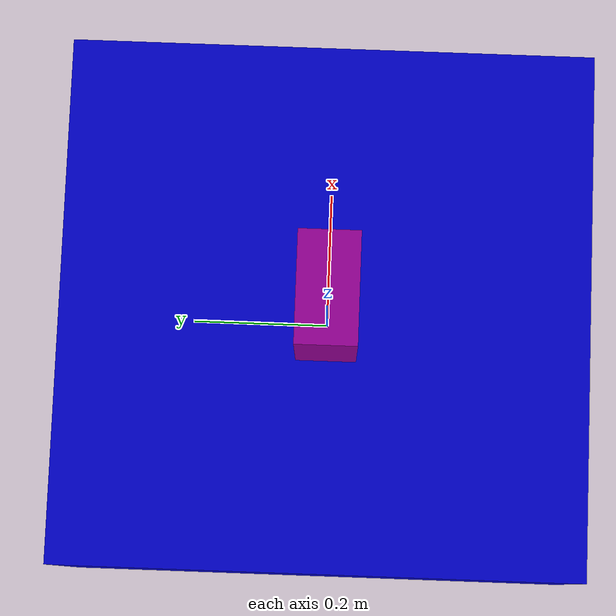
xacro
<?xml version="1.0"?>
<robot xmlns:xacro="http://www.ros.org/wiki/xacro" name="my_modular_robot">

    <xacro:include filename="devices/materials.xacro" />
    <xacro:include filename="devices/rover_assembly.xacro" />

    <link name="base_link"/>

    <xacro:build_robot parent="base_link" />

</robot>

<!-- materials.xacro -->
<robot xmlns:xacro="http://www.ros.org/wiki/xacro">
    <!-- Jednostka centralna i sterowanie: Raspberry Pi 5, STM32 NUCLEO -->
    <material name="central_control_unit">
        <color rgba="0.0 0.8 0.0 1.0"/>
    </material>
    <!-- System percepcji i czujników: RPLidar, kamery -->
    <material name="sensors_perception">
        <color rgba="0.0 0.0 0.8 1.0"/>
    </material>
    <!-- Napęd i mechanizmy wykonawcze: silniki BLDC Nema23, sterowniki BLD-120A-->
    <material name="actuators_drives">
        <color rgba="0.3 0.3 0.3 1.0"/>
    </material>
    <!-- Komunikacja bezprzewodowa:  MikroTik, Ubiquiti, antena-->
    <material name="wireless_communication">
        <color rgba="0.6 0.0 0.6 1.0"/>
    </material>
    <!-- Zasilanie i konwersja energii: LiFePO4, przetwornice Step-Down, multiplekser I2C-->
    <material name="power_energy">
        <color rgba="1.0 0.5 0.0 1.0"/>
    </material>
    <!-- Mechanika i gospodarka cieplna: tłumiki, Raspberry Pi Active Cooler, kasetę sterowniczą-->
    <material name="mechanics_thermal">
        <color rgba="0.75 0.75 0.75 1.0"/>
    </material>
    <!-- Mechanika i gospodarka cieplna: BONPOW-->
    <material name="signaling_ui">
        <color rgba="1.0 0.0 0.0 1.0"/>
    </material>

</robot>

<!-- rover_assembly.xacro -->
<robot xmlns:xacro="http://www.ros.org/wiki/xacro">
    <xacro:include filename="all_devices.xacro" />
    <xacro:include filename="factory.xacro" />

    <xacro:macro name="build_robot" params="parent">

        <xacro:insert_component
            name="Active_Cooler"
            prefix="cooler"
            parent="rpi5_link"
            material="mechanics_thermal" />

        <xacro:insert_component
            name="AirMax_Sector"
            prefix="sector_ant"
            parent="${parent}"
            material="wireless_communication" />

        <xacro:insert_component
            name="Antena"
            prefix="wifi_ant"
            parent="router_link"
            material="wireless_communication" />

        <xacro:insert_component
            name="Battery"
            prefix="main_battery"
            parent="${parent}"
            material="power_energy" />

        <xacro:insert_component
            name="BLDC"
            prefix="motor"
            parent="${parent}"
            material="actuators_drives" />

        <xacro:insert_component
            name="Control_Box"
            prefix="box"
            parent="${parent}"
            material="mechanics_thermal" />

        <xacro:insert_component
            name="Dampers"
            prefix="damper_1"
            parent="${parent}"
            material="mechanics_thermal" />

        <xacro:insert_component
            name="Driver_BLD120A"
            prefix="motor_driver"
            parent="${parent}"
            material="actuators_drives" />

        <xacro:insert_component
            name="Encoder"
            prefix="encoder_1"
            parent="${parent}"
            material="sensors_perception" />

        <xacro:insert_component
            name="GPS"
            prefix="gps"
            parent="${parent}"
            material="sensors_perception" />

        <xacro:insert_component
            name="LP22DF"
            prefix="fan_extra"
            parent="${parent}"
            material="mechanics_thermal" />

        <xacro:insert_component
            name="MikroTik"
            prefix="router"
            parent="${parent}"
            material="wireless_communication" />

        <xacro:insert_component
            name="NoIR_Cam"
            prefix="cam_noir"
            parent="rpi5_link"
            material="sensors_perception" />

        <xacro:insert_component
            name="Pololu_8A"
            prefix="pololu"
            parent="${parent}"
            material="power_energy" />

        <xacro:insert_component
            name="RocketM2"
            prefix="rocket"
            parent="${parent}"
            material="wireless_communication" />

        <xacro:insert_component
            name="RPI5"
            prefix="rpi5"
            parent="${parent}"
            material="central_control_unit" />

        <xacro:insert_component
            name="RPi_Cam_v3"
            prefix="cam_v3"
            parent="rpi5_link"
            material="sensors_perception" />

        <xacro:insert_component
            name="RPLidar"
            prefix="lidar"
            parent="${parent}"
            material="sensors_perception" />

        <xacro:insert_component
            name="Signal_Tower"
            prefix="tower"
            parent="${parent}"
            material="signaling_ui" />

        <xacro:insert_component
            name="StepDown_5A"
            prefix="step_down"
            parent="${parent}"
            material="power_energy" />

        <xacro:insert_component
            name="STM32"
            prefix="stm32"
            parent="${parent}"
            material="central_control_unit" />

        <xacro:insert_component
            name="TCA9548A"
            prefix="i2c_mux"
            parent="rpi5_link"
            material="power_energy" />

    </xacro:macro>
</robot>

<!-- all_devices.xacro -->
<robot xmlns:xacro="http://www.ros.org/wiki/xacro" name="robot">

    <xacro:include filename="data/Active_Cooler_data.xacro" />
    <xacro:include filename="data/AirMax_Sector_data.xacro" />
    <xacro:include filename="data/Antena_data.xacro" />
    <xacro:include filename="data/Battery_data.xacro" />
    <xacro:include filename="data/BLDC_data.xacro" />
    <xacro:include filename="data/Control_Box_data.xacro" />
    <xacro:include filename="data/Dampers_data.xacro" />
    <xacro:include filename="data/Driver_BLD120A_data.xacro" />
    <xacro:include filename="data/Encoder_data.xacro" />
    <xacro:include filename="data/GPS_data.xacro" />
    <xacro:include filename="data/LP22DF_data.xacro" />
    <xacro:include filename="data/MikroTik_data.xacro" />
    <xacro:include filename="data/NoIR_Cam_data.xacro" />
    <xacro:include filename="data/Pololu_8A_data.xacro" />
    <xacro:include filename="data/RocketM2_data.xacro" />
    <xacro:include filename="data/RPi_Cam_v3_data.xacro" />
    <xacro:include filename="data/RPI5_data.xacro" />
    <xacro:include filename="data/RPLidar_data.xacro" />
    <xacro:include filename="data/Signal_Tower_data.xacro" />
    <xacro:include filename="data/StepDown_5A_data.xacro" />
    <xacro:include filename="data/STM32_data.xacro" />
    <xacro:include filename="data/TCA9548A_data.xacro" />

    <xacro:include filename="position.xacro" />
    <xacro:include filename="materials.xacro" />
</robot>

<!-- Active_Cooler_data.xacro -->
<robot xmlns:xacro="http://www.ros.org/wiki/xacro">
    <!-- POMIARY PODANE W MILIMETRACH -->
    <!-- Raspberry Pi Active Cooler - aktywne chłodzenie - radiator + wentylator do Raspberry Pi 5 -->
    <xacro:macro name="Active_Cooler_data">
        <xacro:property name="length" value="85.0" scope="parent" />
        <xacro:property name="width" value="56.0" scope="parent" />
        <xacro:property name="height" value="5.0" scope="parent" />
        <xacro:property name="weight" value="0.025" scope="parent" />
        <xacro:property name="ixx" value="0.0" scope="parent" />
        <xacro:property name="ixy" value="0.0" scope="parent" />
        <xacro:property name="ixz" value="0.0" scope="parent" />
        <xacro:property name="iyx" value="0.0" scope="parent" />
        <xacro:property name="iyy" value="0.0" scope="parent" />
        <xacro:property name="iyz" value="0.0" scope="parent" />
        <xacro:property name="izx" value="0.0" scope="parent" />
        <xacro:property name="izy" value="0.0" scope="parent" />
        <xacro:property name="izz" value="0.0" scope="parent" />
    </xacro:macro>
</robot>

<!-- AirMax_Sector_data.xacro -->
<robot xmlns:xacro="http://www.ros.org/wiki/xacro">
    <!-- POMIARY PODANE W MILIMETRACH -->
    <!-- Ubiquiti AirMax Sector  -->
    <xacro:macro name="AirMax_Sector_data">
        <xacro:property name="length" value="155.0" scope="parent" />
        <xacro:property name="width" value="85.0" scope="parent" />
        <xacro:property name="height" value="710.0" scope="parent" />
        <xacro:property name="weight" value="3.9" scope="parent" />
        <xacro:property name="ixx" value="0.177" scope="parent" />
        <xacro:property name="ixy" value="0.0000107" scope="parent" />
        <xacro:property name="ixz" value="0.0000152" scope="parent" />
        <xacro:property name="iyx" value="0.0000107" scope="parent" />
        <xacro:property name="iyy" value="0.009" scope="parent" />
        <xacro:property name="iyz" value="0.0000348" scope="parent" />
        <xacro:property name="izx" value="0.0000152" scope="parent" />
        <xacro:property name="izy" value="0.0000348" scope="parent" />
        <xacro:property name="izz" value="0.183" scope="parent" />
    </xacro:macro>
</robot>

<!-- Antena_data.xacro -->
<robot xmlns:xacro="http://www.ros.org/wiki/xacro">
    <!-- POMIARY PODANE W MILIMETRACH -->
    <!-- Antena dookolna -->
    <xacro:macro name="Antena_data">
        <xacro:property name="length" value="24.0" scope="parent" />
        <xacro:property name="width" value="24.0" scope="parent" />
        <xacro:property name="height" value="697.0" scope="parent" />
        <xacro:property name="weight" value="0.75" scope="parent" />
        <xacro:property name="ixx" value="0.034" scope="parent" />
        <xacro:property name="ixy" value="0.000081" scope="parent" />
        <xacro:property name="ixz" value="0.00000382" scope="parent" />
        <xacro:property name="iyx" value="0.000081" scope="parent" />
        <xacro:property name="iyy" value="0.0000799" scope="parent" />
        <xacro:property name="iyz" value="0.0" scope="parent" />
        <xacro:property name="izx" value="0.0" scope="parent" />
        <xacro:property name="izy" value="0.0" scope="parent" />
        <xacro:property name="izz" value="0.034" scope="parent" />
    </xacro:macro>
</robot>

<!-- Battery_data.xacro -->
<robot xmlns:xacro="http://www.ros.org/wiki/xacro">
    <!-- POMIARY PODANE W MILIMETRACH -->
    <!-- AKUMULATOR LITOWO-JONOWY 24V 100AH LIFEPO4 WYSOKA WYDAJNOŚĆ,DŁUGA ŻYWOTNOŚĆ -->
    <xacro:macro name="Battery_data">
        <xacro:property name="length" value="482.6" scope="parent" />
        <xacro:property name="width" value="170.1" scope="parent" />
        <xacro:property name="height" value="241.0" scope="parent" />
        <xacro:property name="weight" value="21.0" scope="parent" />
        <xacro:property name="ixx" value="0.51" scope="parent" />
        <xacro:property name="ixy" value="0.0" scope="parent" />
        <xacro:property name="ixz" value="0.0" scope="parent" />
        <xacro:property name="iyx" value="0.0" scope="parent" />
        <xacro:property name="iyy" value="0.152" scope="parent" />
        <xacro:property name="iyz" value="0.0" scope="parent" />
        <xacro:property name="izx" value="0.0" scope="parent" />
        <xacro:property name="izy" value="0.0" scope="parent" />
        <xacro:property name="izz" value="0.459" scope="parent" />
    </xacro:macro>
</robot>

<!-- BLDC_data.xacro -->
<robot xmlns:xacro="http://www.ros.org/wiki/xacro">
    <!-- POMIARY PODANE W MILIMETRACH -->
    <!-- Silnik bezszczotkowy BLDC Nema23 125W 24VDC (1szt.) z przekładnia -->
    <xacro:macro name="BLDC_data">
        <xacro:property name="length" value="208.0" scope="parent" />
        <xacro:property name="width" value="60.0" scope="parent" />
        <xacro:property name="height" value="60.0" scope="parent" />
        <xacro:property name="weight" value="2.02" scope="parent" />
        <xacro:property name="ixx" value="0.006" scope="parent" />
        <xacro:property name="ixy" value="0.00000000854" scope="parent" />
        <xacro:property name="ixz" value="0.00000224" scope="parent" />
        <xacro:property name="iyx" value="0.00000000854" scope="parent" />
        <xacro:property name="iyy" value="0.006" scope="parent" />
        <xacro:property name="iyz" value="0.00000131" scope="parent" />
        <xacro:property name="izx" value="0.00000224" scope="parent" />
        <xacro:property name="izy" value="0.00000131" scope="parent" />
        <xacro:property name="izz" value="0.001" scope="parent" />
    </xacro:macro>
</robot>

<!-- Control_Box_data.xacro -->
<robot xmlns:xacro="http://www.ros.org/wiki/xacro">
    <!-- POMIARY PODANE W MILIMETRACH -->
    <!-- FB1W-YW1B-V4E02-RIDEC-Kaseta sterownicza -->
    <xacro:macro name="Control_Box_data">
        <xacro:property name="length" value="40.0" scope="parent" />
        <xacro:property name="width" value="40.0" scope="parent" />
        <xacro:property name="height" value="80.0" scope="parent" />
        <xacro:property name="weight" value="0.2272" scope="parent" />
        <xacro:property name="ixx" value="0.0" scope="parent" />
        <xacro:property name="ixy" value="0.0" scope="parent" />
        <xacro:property name="ixz" value="0.0" scope="parent" />
        <xacro:property name="iyx" value="0.0" scope="parent" />
        <xacro:property name="iyy" value="0.0" scope="parent" />
        <xacro:property name="iyz" value="0.0" scope="parent" />
        <xacro:property name="izx" value="0.0" scope="parent" />
        <xacro:property name="izy" value="0.0" scope="parent" />
        <xacro:property name="izz" value="0.0" scope="parent" />
    </xacro:macro>
</robot>

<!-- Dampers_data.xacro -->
<robot xmlns:xacro="http://www.ros.org/wiki/xacro">
    <!-- POMIARY PODANE W MILIMETRACH -->
    <!-- ALUMINIOWE TŁUMIKI TYLNE POgrubione SPRĘŻYNY 187 MM - 4 SZT. srebrne GPM ARRMA 1/5 KRATON 8S OUTCAST 8S -->
    <xacro:macro name="Dampers_data">
        <xacro:property name="length" value="172.854" scope="parent" />
        <xacro:property name="width" value="20.0" scope="parent" />
        <xacro:property name="height" value="0.0" scope="parent" />
        <xacro:property name="weight" value="0.4" scope="parent" />
        <xacro:property name="ixx" value="0.0" scope="parent" />
        <xacro:property name="ixy" value="0.0" scope="parent" />
        <xacro:property name="ixz" value="0.0" scope="parent" />
        <xacro:property name="iyx" value="0.0" scope="parent" />
        <xacro:property name="iyy" value="0.0" scope="parent" />
        <xacro:property name="iyz" value="0.0" scope="parent" />
        <xacro:property name="izx" value="0.0" scope="parent" />
        <xacro:property name="izy" value="0.0" scope="parent" />
        <xacro:property name="izz" value="0.0" scope="parent" />
    </xacro:macro>
</robot>

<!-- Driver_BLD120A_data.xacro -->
<robot xmlns:xacro="http://www.ros.org/wiki/xacro">
    <!-- POMIARY PODANE W MILIMETRACH -->
    <!-- Sterownik silnika bezszczotkowego BLDC BLD-120A 10A 12-48 VDC (4 szt.) -->
    <xacro:macro name="Driver_BLD120A_data">
        <xacro:property name="length" value="90.0" scope="parent" />
        <xacro:property name="width" value="143.0" scope="parent" />
        <xacro:property name="height" value="33.0" scope="parent" />
        <xacro:property name="weight" value="0.6" scope="parent" />
        <xacro:property name="ixx" value="0.001" scope="parent" />
        <xacro:property name="ixy" value="0.0000000905" scope="parent" />
        <xacro:property name="ixz" value="0.0000096" scope="parent" />
        <xacro:property name="iyx" value="0.0000000905" scope="parent" />
        <xacro:property name="iyy" value="0.0" scope="parent" />
        <xacro:property name="iyz" value="0.000000613" scope="parent" />
        <xacro:property name="izx" value="0.0000096" scope="parent" />
        <xacro:property name="izy" value="0.000000613" scope="parent" />
        <xacro:property name="izz" value="0.001" scope="parent" />
    </xacro:macro>
</robot>

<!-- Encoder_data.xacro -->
<robot xmlns:xacro="http://www.ros.org/wiki/xacro">
    <!-- POMIARY PODANE W MILIMETRACH -->
    <!-- Moduł enkodera magnetycznego z układem AS5600 -->
    <xacro:macro name="Encoder_data">
        <xacro:property name="length" value="23.2" scope="parent" />
        <xacro:property name="width" value="22.65" scope="parent" />
        <xacro:property name="height" value="3.5" scope="parent" />
        <xacro:property name="weight" value="0.0001" scope="parent" />
        <xacro:property name="ixx" value="0.000000032" scope="parent" />
        <xacro:property name="ixy" value="0.0" scope="parent" />
        <xacro:property name="ixz" value="0.0" scope="parent" />
        <xacro:property name="iyx" value="0.0" scope="parent" />
        <xacro:property name="iyy" value="0.0000000331" scope="parent" />
        <xacro:property name="iyz" value="0.0" scope="parent" />
        <xacro:property name="izx" value="0.0" scope="parent" />
        <xacro:property name="izy" value="0.0" scope="parent" />
        <xacro:property name="izz" value="0.0000000645" scope="parent" />
    </xacro:macro>
</robot>

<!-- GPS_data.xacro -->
<robot xmlns:xacro="http://www.ros.org/wiki/xacro">
    <!-- POMIARY PODANE W MILIMETRACH -->
    <!-- Qwiic GPS Dead Reckoning Breakout -->
    <xacro:macro name="GPS_data">
        <xacro:property name="length" value="41.0" scope="parent" />
        <xacro:property name="width" value="33.0" scope="parent" />
        <xacro:property name="height" value="4.0" scope="parent" />
        <xacro:property name="weight" value="0.0016" scope="parent" />
        <xacro:property name="ixx" value="0.000000165" scope="parent" />
        <xacro:property name="ixy" value="0.00000003001" scope="parent" />
        <xacro:property name="ixz" value="0.0000000009051" scope="parent" />
        <xacro:property name="iyx" value="0.00000003001" scope="parent" />
        <xacro:property name="iyy" value="0.0000002385" scope="parent" />
        <xacro:property name="iyz" value="0.0000000008947" scope="parent" />
        <xacro:property name="izx" value="0.0000000009051" scope="parent" />
        <xacro:property name="izy" value="0.0000000008947" scope="parent" />
        <xacro:property name="izz" value="0.0000004017" scope="parent" />
    </xacro:macro>
</robot>

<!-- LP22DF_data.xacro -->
<robot xmlns:xacro="http://www.ros.org/wiki/xacro">
    <!-- POMIARY PODANE W MILIMETRACH -->
    <!-- LP22DF -->
    <xacro:macro name="LP22DF_data">
        <xacro:property name="length" value="20.3" scope="parent" />
        <xacro:property name="width" value="10.16" scope="parent" />
        <xacro:property name="height" value="3.0" scope="parent" />
        <xacro:property name="weight" value="0.0005" scope="parent" />
        <xacro:property name="ixx" value="0.00000005928" scope="parent" />
        <xacro:property name="ixy" value="0.000000001111" scope="parent" />
        <xacro:property name="ixz" value="0.0000000002117" scope="parent" />
        <xacro:property name="iyx" value="0.000000001111" scope="parent" />
        <xacro:property name="iyy" value="0.00000001464" scope="parent" />
        <xacro:property name="iyz" value="0.00000000056" scope="parent" />
        <xacro:property name="izx" value="0.0000000002117" scope="parent" />
        <xacro:property name="izy" value="0.00000000056" scope="parent" />
        <xacro:property name="izz" value="0.00000007318" scope="parent" />
    </xacro:macro>
</robot>

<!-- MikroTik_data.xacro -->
<robot xmlns:xacro="http://www.ros.org/wiki/xacro">
    <!-- POMIARY PODANE W MILIMETRACH -->
    <!-- MikroTik GrooveA 52 ac (RBGrooveGA-52HPacn) -->
    <xacro:macro name="MikroTik_data">
        <xacro:property name="length" value="44.0" scope="parent" />
        <xacro:property name="width" value="44.0" scope="parent" />
        <xacro:property name="height" value="462.282" scope="parent" />
        <xacro:property name="weight" value="0.193" scope="parent" />
        <xacro:property name="ixx" value="0.001" scope="parent" />
        <xacro:property name="ixy" value="0.0" scope="parent" />
        <xacro:property name="ixz" value="0.0000162" scope="parent" />
        <xacro:property name="iyx" value="0.0" scope="parent" />
        <xacro:property name="iyy" value="0.0" scope="parent" />
        <xacro:property name="iyz" value="0.0000133" scope="parent" />
        <xacro:property name="izx" value="0.0000162" scope="parent" />
        <xacro:property name="izy" value="0.0000133" scope="parent" />
        <xacro:property name="izz" value="0.001" scope="parent" />
    </xacro:macro>
</robot>

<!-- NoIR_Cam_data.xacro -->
<robot xmlns:xacro="http://www.ros.org/wiki/xacro">
    <!-- POMIARY PODANE W MILIMETRACH -->
     <!-- Raspberry Pi NoIR Camera HD v3 12MPx -->
     <xacro:macro name="NoIR_Cam_data">
        <xacro:property name="length" value="23.862" scope="parent" />
        <xacro:property name="width" value="25.0" scope="parent" />
        <xacro:property name="height" value="10.245" scope="parent" />
        <xacro:property name="weight" value="0.004" scope="parent" />
        <xacro:property name="ixx" value="0.000000145" scope="parent" />
        <xacro:property name="ixy" value="0.000000000932" scope="parent" />
        <xacro:property name="ixz" value="0.000000271" scope="parent" />
        <xacro:property name="iyx" value="0.000000000932" scope="parent" />
        <xacro:property name="iyy" value="0.000000171" scope="parent" />
        <xacro:property name="iyz" value="0.0" scope="parent" />
        <xacro:property name="izx" value="0.0" scope="parent" />
        <xacro:property name="izy" value="0.0" scope="parent" />
        <xacro:property name="izz" value="0.000000271" scope="parent" />
    </xacro:macro>
</robot>

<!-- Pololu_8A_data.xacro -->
<robot xmlns:xacro="http://www.ros.org/wiki/xacro">
    <!-- POMIARY PODANE W MILIMETRACH -->
    <!-- D36V50F5 - przetwornica step-down 5V 8A - Pololu 4091 -->
    <xacro:macro name="Pololu_8A_data">
        <xacro:property name="length" value="9.474" scope="parent" />
        <xacro:property name="width" value="25.4" scope="parent" />
        <xacro:property name="height" value="25.4" scope="parent" />
        <xacro:property name="weight" value="0.007" scope="parent" />
        <xacro:property name="ixx" value="0.0000003591" scope="parent" />
        <xacro:property name="ixy" value="0.00000001877" scope="parent" />
        <xacro:property name="ixz" value="0.00000001221" scope="parent" />
        <xacro:property name="iyx" value="0.00000001877" scope="parent" />
        <xacro:property name="iyy" value="0.0000004412" scope="parent" />
        <xacro:property name="iyz" value="0.00000002258" scope="parent" />
        <xacro:property name="izx" value="0.00000001221" scope="parent" />
        <xacro:property name="izy" value="0.00000002258" scope="parent" />
        <xacro:property name="izz" value="0.0000007323" scope="parent" />
    </xacro:macro>
</robot>

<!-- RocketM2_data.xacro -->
<robot xmlns:xacro="http://www.ros.org/wiki/xacro">
    <!-- POMIARY PODANE W MILIMETRACH -->
    <!-- UBIQUITI ROCKETM2 -->
    <xacro:macro name="RocketM2_data">
        <xacro:property name="length" value="168.0" scope="parent" />
        <xacro:property name="width" value="80.0" scope="parent" />
        <xacro:property name="height" value="32.0" scope="parent" />
        <xacro:property name="weight" value="0.5" scope="parent" />
        <xacro:property name="ixx" value="0.001" scope="parent" />
        <xacro:property name="ixy" value="0.00000173" scope="parent" />
        <xacro:property name="ixz" value="0.00000026" scope="parent" />
        <xacro:property name="iyx" value="0.00000173" scope="parent" />
        <xacro:property name="iyy" value="0.0" scope="parent" />
        <xacro:property name="iyz" value="0.0000287" scope="parent" />
        <xacro:property name="izx" value="0.00000026" scope="parent" />
        <xacro:property name="izy" value="0.0000287" scope="parent" />
        <xacro:property name="izz" value="0.001" scope="parent" />
    </xacro:macro>
</robot>

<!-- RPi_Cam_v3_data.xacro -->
<robot xmlns:xacro="http://www.ros.org/wiki/xacro">
    <!-- POMIARY PODANE W MILIMETRACH -->
    <!-- Raspberry Pi Camera HD v3 12MPx -->
    <xacro:macro name="RPi_Cam_v3_data">
        <xacro:property name="length" value="23.862" scope="parent" />
        <xacro:property name="width" value="25.0" scope="parent" />
        <xacro:property name="height" value="10.245" scope="parent" />
        <xacro:property name="weight" value="0.004" scope="parent" />
        <xacro:property name="ixx" value="0.000000145" scope="parent" />
        <xacro:property name="ixy" value="0.000000000932" scope="parent" />
        <xacro:property name="ixz" value="0.00000748" scope="parent" />
        <xacro:property name="iyx" value="0.000000000932" scope="parent" />
        <xacro:property name="iyy" value="0.000000171" scope="parent" />
        <xacro:property name="iyz" value="0.0" scope="parent" />
        <xacro:property name="izx" value="0.00000748" scope="parent" />
        <xacro:property name="izy" value="0.0" scope="parent" />
        <xacro:property name="izz" value="0.000000271" scope="parent" />
        </xacro:macro>
</robot>

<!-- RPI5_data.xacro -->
<robot xmlns:xacro="http://www.ros.org/wiki/xacro">
    <!-- POMIARY PODANE W MILIMETRACH -->
    <!-- RASPBERRY PI 5 -->
    <xacro:macro name="RPI5_data">
        <xacro:property name="length" value="85.0" scope="parent" />
        <xacro:property name="width" value="56.0" scope="parent" />
        <xacro:property name="height" value="17.0" scope="parent" />
        <xacro:property name="weight" value="0.05" scope="parent" />
        <xacro:property name="ixx" value="0.00001453" scope="parent" />
        <xacro:property name="ixy" value="0.000003547" scope="parent" />
        <xacro:property name="ixz" value="0.0000002452" scope="parent" />
        <xacro:property name="iyx" value="0.000003547" scope="parent" />
        <xacro:property name="iyy" value="0.00004497" scope="parent" />
        <xacro:property name="iyz" value="0.00000006532" scope="parent" />
        <xacro:property name="izx" value="0.0000002452" scope="parent" />
        <xacro:property name="izy" value="0.00000006532" scope="parent" />
        <xacro:property name="izz" value="0.00003299" scope="parent" />
    </xacro:macro>
</robot>

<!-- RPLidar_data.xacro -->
<robot xmlns:xacro="http://www.ros.org/wiki/xacro">
    <!-- POMIARY PODANE W MILIMETRACH -->
    <!-- Skaner laserowy RPLidar A2M12 - 360 stopni - 12m -->
    <xacro:macro name="RPLidar_data">
        <xacro:property name="length" value="750.0" scope="parent" />
        <xacro:property name="width" value="750.0" scope="parent" />
        <xacro:property name="height" value="372.0" scope="parent" />
        <xacro:property name="weight" value="0.19" scope="parent" />
        <xacro:property name="ixx" value="0.01" scope="parent" />
        <xacro:property name="ixy" value="0.001" scope="parent" />
        <xacro:property name="ixz" value="0.0" scope="parent" />
        <xacro:property name="iyx" value="0.001" scope="parent" />
        <xacro:property name="iyy" value="0.017" scope="parent" />
        <xacro:property name="iyz" value="0.0" scope="parent" />
        <xacro:property name="izx" value="0.0" scope="parent" />
        <xacro:property name="izy" value="0.0" scope="parent" />
        <xacro:property name="izz" value="0.013" scope="parent" />
    </xacro:macro>
</robot>

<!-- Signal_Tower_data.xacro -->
<robot xmlns:xacro="http://www.ros.org/wiki/xacro">
    <!-- POMIARY PODANE W MILIMETRACH -->
    <!-- HBJD-40/D/3/RYG/24AC/DC/BONPOW-Kolumna sygnalizacyjna  -->
    <xacro:macro name="Signal_Tower_data">
        <xacro:property name="length" value="490.0" scope="parent" />
        <xacro:property name="width" value="56.0" scope="parent" />
        <xacro:property name="height" value="56.0" scope="parent" />
        <xacro:property name="weight" value="0.2452" scope="parent" />
        <xacro:property name="ixx" value="0.004" scope="parent" />
        <xacro:property name="ixy" value="0.0" scope="parent" />
        <xacro:property name="ixz" value="0.000000004543" scope="parent" />
        <xacro:property name="iyx" value="0.0" scope="parent" />
        <xacro:property name="iyy" value="0.004" scope="parent" />
        <xacro:property name="iyz" value="0.000000000411" scope="parent" />
        <xacro:property name="izx" value="0.000000004543" scope="parent" />
        <xacro:property name="izy" value="0.000000000411" scope="parent" />
        <xacro:property name="izz" value="0.00008791" scope="parent" />
    </xacro:macro>
</robot>

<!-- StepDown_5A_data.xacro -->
<robot xmlns:xacro="http://www.ros.org/wiki/xacro">
    <!-- POMIARY PODANE W MILIMETRACH -->
    <!-- Moduł przetwornicy DC-DC Step-Down 1,25-36V 5A -->
    <xacro:macro name="StepDown_5A_data">
        <xacro:property name="length" value="54.0" scope="parent" />
        <xacro:property name="width" value="18.0" scope="parent" />
        <xacro:property name="height" value="23.0" scope="parent" />
        <xacro:property name="weight" value="0.01" scope="parent" />
        <xacro:property name="ixx" value="0.00002535" scope="parent" />
        <xacro:property name="ixy" value="0.0" scope="parent" />
        <xacro:property name="ixz" value="0.0" scope="parent" />
        <xacro:property name="iyx" value="0.0" scope="parent" />
        <xacro:property name="iyy" value="0.000006674" scope="parent" />
        <xacro:property name="iyz" value="0.0" scope="parent" />
        <xacro:property name="izx" value="0.0" scope="parent" />
        <xacro:property name="izy" value="0.0" scope="parent" />
        <xacro:property name="izz" value="0.00002696" scope="parent" />
    </xacro:macro>
</robot>

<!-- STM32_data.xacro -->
<robot xmlns:xacro="http://www.ros.org/wiki/xacro">
    <!-- POMIARY PODANE W MILIMETRACH -->
    <!-- STM32 NUCLEO-H755ZI-Q - STM32H755ZIT6 ARM Cortex M7/M4 -->
    <xacro:macro name="STM32_data">
        <xacro:property name="length" value="138.0" scope="parent" />
        <xacro:property name="width" value="70.0" scope="parent" />
        <xacro:property name="height" value="13.1" scope="parent" />
        <xacro:property name="weight" value="0.1" scope="parent" />
        <xacro:property name="ixx" value="0.0" scope="parent" />
        <xacro:property name="ixy" value="0.000005797" scope="parent" />
        <xacro:property name="ixz" value="0.0000006026" scope="parent" />
        <xacro:property name="iyx" value="0.000005797" scope="parent" />
        <xacro:property name="iyy" value="0.00003126" scope="parent" />
        <xacro:property name="iyz" value="0.000003798" scope="parent" />
        <xacro:property name="izx" value="0.0000006026" scope="parent" />
        <xacro:property name="izy" value="0.000003798" scope="parent" />
        <xacro:property name="izz" value="0.0" scope="parent" />
    </xacro:macro>
</robot>

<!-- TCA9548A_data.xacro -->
<robot xmlns:xacro="http://www.ros.org/wiki/xacro">
    <!-- POMIARY PODANE W MILIMETRACH -->
    <!-- TCA9548A - moduł z multiplekserem I2C - Adafruit 2717 -->
    <xacro:macro name="TCA9548A_data">
        <xacro:property name="length" value="30.48" scope="parent" />
        <xacro:property name="width" value="17.78" scope="parent" />
        <xacro:property name="height" value="3.44" scope="parent" />
        <xacro:property name="weight" value="0.004" scope="parent" />
        <xacro:property name="ixx" value="0.000000246" scope="parent" />
        <xacro:property name="ixy" value="0.000000000499" scope="parent" />
        <xacro:property name="ixz" value="0.0" scope="parent" />
        <xacro:property name="iyx" value="0.000000000499" scope="parent" />
        <xacro:property name="iyy" value="0.0000000843" scope="parent" />
        <xacro:property name="iyz" value="0.0" scope="parent" />
        <xacro:property name="izx" value="0.0" scope="parent" />
        <xacro:property name="izy" value="0.0" scope="parent" />
        <xacro:property name="izz" value="0.000000328" scope="parent" />
    </xacro:macro>
</robot>

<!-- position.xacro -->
<robot xmlns:xacro="http://www.ros.org/wiki/xacro">

    <!-- Raspberry Pi Active Cooler - aktywne chłodzenie - radiator + wentylator do Raspberry Pi 5 -->
    <xacro:macro name="Active_Cooler_pos">
        <xacro:property name="pos_x" value="0.0" scope="parent" />
        <xacro:property name="pos_y" value="0.0" scope="parent" />
        <xacro:property name="pos_z" value="0.0" scope="parent" />
        <xacro:property name="pos_r" value="0.0" scope="parent" />
        <xacro:property name="pos_p" value="0.0" scope="parent" />
        <xacro:property name="pos_yy" value="0.0" scope="parent" />
    </xacro:macro>
    <!-- Ubiquiti AirMax Sector  -->
    <xacro:macro name="AirMax_Sector_pos">
        <xacro:property name="pos_x" value="1.0" scope="parent" />
        <xacro:property name="pos_y" value="0.0" scope="parent" />
        <xacro:property name="pos_z" value="0.0" scope="parent" />
        <xacro:property name="pos_r" value="0.0" scope="parent" />
        <xacro:property name="pos_p" value="0.0" scope="parent" />
        <xacro:property name="pos_yy" value="0.0" scope="parent" />
    </xacro:macro>

    <!-- Antena dookolna -->
    <xacro:macro name="Antena_pos">
        <xacro:property name="pos_x" value="2.0" scope="parent" />
        <xacro:property name="pos_y" value="0.0" scope="parent" />
        <xacro:property name="pos_z" value="0.0" scope="parent" />
        <xacro:property name="pos_r" value="0.0" scope="parent" />
        <xacro:property name="pos_p" value="0.0" scope="parent" />
        <xacro:property name="pos_yy" value="0.0" scope="parent" />
    </xacro:macro>

    <!-- AKUMULATOR LITOWO-JONOWY 24V 10..0AH LIFEPO4 WYSOKA WYDAJNOŚĆ,DŁUGA ŻYWOTNOŚĆ -->
    <xacro:macro name="Battery_pos">
        <xacro:property name="pos_x" value="3.0" scope="parent" />
        <xacro:property name="pos_y" value="0.0" scope="parent" />
        <xacro:property name="pos_z" value="0.0" scope="parent" />
        <xacro:property name="pos_r" value="0.0" scope="parent" />
        <xacro:property name="pos_p" value="0.0" scope="parent" />
        <xacro:property name="pos_yy" value="0.0" scope="parent" />
    </xacro:macro>

    <!-- Silnik bezszczotkowy BLDC Nema23 125W 24VDC (1szt.) z przekładnia -->
    <xacro:macro name="BLDC_pos">
        <xacro:property name="pos_x" value="4.0" scope="parent" />
        <xacro:property name="pos_y" value="0.0" scope="parent" />
        <xacro:property name="pos_z" value="0.0" scope="parent" />
        <xacro:property name="pos_r" value="0.0" scope="parent" />
        <xacro:property name="pos_p" value="0.0" scope="parent" />
        <xacro:property name="pos_yy" value="0.0" scope="parent" />
    </xacro:macro>

    <!-- FB1W-YW1B-V4E02-RIDEC-Kaseta sterownicza -->
    <xacro:macro name="Control_Box_pos">
        <xacro:property name="pos_x" value="0.0" scope="parent" />
        <xacro:property name="pos_y" value="1.0" scope="parent" />
        <xacro:property name="pos_z" value="0.0" scope="parent" />
        <xacro:property name="pos_r" value="0.0" scope="parent" />
        <xacro:property name="pos_p" value="0.0" scope="parent" />
        <xacro:property name="pos_yy" value="0.0" scope="parent" />
    </xacro:macro>

    <!-- ALUMINIOWE TŁUMIKI TYLNE POgrubione SPRĘŻYNY 187 MM - 4 SZT. srebrne GPM ARRMA 1/5 KRATON 8S OUTCAST 8S -->
    <xacro:macro name="Dampers_pos">
        <xacro:property name="pos_x" value="1.0" scope="parent" />
        <xacro:property name="pos_y" value="1.0" scope="parent" />
        <xacro:property name="pos_z" value="0.0" scope="parent" />
        <xacro:property name="pos_r" value="0.0" scope="parent" />
        <xacro:property name="pos_p" value="0.0" scope="parent" />
        <xacro:property name="pos_yy" value="0.0" scope="parent" />
    </xacro:macro>

    <!-- Sterownik silnika bezszczotkowego BLDC BLD-120A 10A 12-48 VDC (4 szt.) -->
    <xacro:macro name="Driver_BLD120A_pos">
        <xacro:property name="pos_x" value="2.0" scope="parent" />
        <xacro:property name="pos_y" value="1.0" scope="parent" />
        <xacro:property name="pos_z" value="0.0" scope="parent" />
        <xacro:property name="pos_r" value="0.0" scope="parent" />
        <xacro:property name="pos_p" value="0.0" scope="parent" />
        <xacro:property name="pos_yy" value="0.0" scope="parent" />
    </xacro:macro>

    <!-- Moduł enkodera magnetycznego z układem AS56 -->
    <xacro:macro name="Encoder_pos">
        <xacro:property name="pos_x" value="3.0" scope="parent" />
        <xacro:property name="pos_y" value="1.0" scope="parent" />
        <xacro:property name="pos_z" value="0.0" scope="parent" />
        <xacro:property name="pos_r" value="0.0" scope="parent" />
        <xacro:property name="pos_p" value="0.0" scope="parent" />
        <xacro:property name="pos_yy" value="0.0" scope="parent" />
    </xacro:macro>

    <!-- Qwiic GPS Dead Reckoning Breakout -->
    <xacro:macro name="GPS_pos">
        <xacro:property name="pos_x" value="4.0" scope="parent" />
        <xacro:property name="pos_y" value="1.0" scope="parent" />
        <xacro:property name="pos_z" value="0.0" scope="parent" />
        <xacro:property name="pos_r" value="0.0" scope="parent" />
        <xacro:property name="pos_p" value="0.0" scope="parent" />
        <xacro:property name="pos_yy" value="0.0" scope="parent" />
    </xacro:macro>

    <!-- LP22DF -->
    <xacro:macro name="LP22DF_pos">
        <xacro:property name="pos_x" value="0.0" scope="parent" />
        <xacro:property name="pos_y" value="2.0" scope="parent" />
        <xacro:property name="pos_z" value="0.0" scope="parent" />
        <xacro:property name="pos_r" value="0.0" scope="parent" />
        <xacro:property name="pos_p" value="0.0" scope="parent" />
        <xacro:property name="pos_yy" value="0.0" scope="parent" />
    </xacro:macro>

    <!-- MikroTik GrooveA 52 ac (RBGrooveGA-52HPacn) -->
    <xacro:macro name="MikroTik_pos">
        <xacro:property name="pos_x" value="1.0" scope="parent" />
        <xacro:property name="pos_y" value="2.0" scope="parent" />
        <xacro:property name="pos_z" value="0.0" scope="parent" />
        <xacro:property name="pos_r" value="0.0" scope="parent" />
        <xacro:property name="pos_p" value="0.0" scope="parent" />
        <xacro:property name="pos_yy" value="0.0" scope="parent" />
    </xacro:macro>

     <!-- Raspberry Pi NoIR Camera HD v3 12MPx -->
     <xacro:macro name="NoIR_Cam_pos">
        <xacro:property name="pos_x" value="2.0" scope="parent" />
        <xacro:property name="pos_y" value="3.0" scope="parent" />
        <xacro:property name="pos_z" value="0.0" scope="parent" />
        <xacro:property name="pos_r" value="0.0" scope="parent" />
        <xacro:property name="pos_p" value="0.0" scope="parent" />
        <xacro:property name="pos_yy" value="0.0" scope="parent" />
    </xacro:macro>

    <!-- D36V50F5 - przetwornica step-down 5V 8A - Pololu 4091 -->
    <xacro:macro name="Pololu_8A_pos">
        <xacro:property name="pos_x" value="3.0" scope="parent" />
        <xacro:property name="pos_y" value="3.0" scope="parent" />
        <xacro:property name="pos_z" value="0.0" scope="parent" />
        <xacro:property name="pos_r" value="0.0" scope="parent" />
        <xacro:property name="pos_p" value="0.0" scope="parent" />
        <xacro:property name="pos_yy" value="0.0" scope="parent" />
    </xacro:macro>

    <!-- UBIQUITI ROCKETM2 -->
    <xacro:macro name="RocketM2_pos">
        <xacro:property name="pos_x" value="4.0" scope="parent" />
        <xacro:property name="pos_y" value="3.0" scope="parent" />
        <xacro:property name="pos_z" value="0.0" scope="parent" />
        <xacro:property name="pos_r" value="0.0" scope="parent" />
        <xacro:property name="pos_p" value="0.0" scope="parent" />
        <xacro:property name="pos_yy" value="0.0" scope="parent" />
    </xacro:macro>

    <!-- Raspberry Pi Camera HD v3 12MPx -->
    <xacro:macro name="RPi_Cam_v3_pos">
        <xacro:property name="pos_x" value="0.0" scope="parent" />
        <xacro:property name="pos_y" value="4.0" scope="parent" />
        <xacro:property name="pos_z" value="0.0" scope="parent" />
        <xacro:property name="pos_r" value="0.0" scope="parent" />
        <xacro:property name="pos_p" value="0.0" scope="parent" />
        <xacro:property name="pos_yy" value="0.0" scope="parent" />
    </xacro:macro>

    <!-- RASPBERRY PI 5 -->
    <xacro:macro name="RPI5_pos">
        <xacro:property name="pos_x" value="1.0" scope="parent" />
        <xacro:property name="pos_y" value="4.0" scope="parent" />
        <xacro:property name="pos_z" value="0.0" scope="parent" />
        <xacro:property name="pos_r" value="0.0" scope="parent" />
        <xacro:property name="pos_p" value="0.0" scope="parent" />
        <xacro:property name="pos_yy" value="0.0" scope="parent" />
    </xacro:macro>

    <!-- Skaner laserowy RPLidar A2M12 - 360 stopni - 12m -->
    <xacro:macro name="RPLidar_pos">
        <xacro:property name="pos_x" value="2.0" scope="parent" />
        <xacro:property name="pos_y" value="4.0" scope="parent" />
        <xacro:property name="pos_z" value="0.0" scope="parent" />
        <xacro:property name="pos_r" value="0.0" scope="parent" />
        <xacro:property name="pos_p" value="0.0" scope="parent" />
        <xacro:property name="pos_yy" value="0.0" scope="parent" />
    </xacro:macro>

    <!-- HBJD-40/D/3/RYG/24AC/DC/BONPOW-Kolumna sygnalizacyjna  -->
    <xacro:macro name="Signal_Tower_pos">
        <xacro:property name="pos_x" value="3.0" scope="parent" />
        <xacro:property name="pos_y" value="4.0" scope="parent" />
        <xacro:property name="pos_z" value="0.0" scope="parent" />
        <xacro:property name="pos_r" value="0.0" scope="parent" />
        <xacro:property name="pos_p" value="0.0" scope="parent" />
        <xacro:property name="pos_yy" value="0.0" scope="parent" />
    </xacro:macro>

    <!-- Moduł przetwornicy DC-DC Step-Down 1,25-36V 5A -->
    <xacro:macro name="StepDown_5A_pos">
        <xacro:property name="pos_x" value="4.0" scope="parent" />
        <xacro:property name="pos_y" value="4.0" scope="parent" />
        <xacro:property name="pos_z" value="0.0" scope="parent" />
        <xacro:property name="pos_r" value="0.0" scope="parent" />
        <xacro:property name="pos_p" value="0.0" scope="parent" />
        <xacro:property name="pos_yy" value="0.0" scope="parent" />
    </xacro:macro>

    <!-- STM32 NUCLEO-H755ZI-Q - STM32H755ZIT6 ARM Cortex M7/M4 -->
    <xacro:macro name="STM32_pos">
        <xacro:property name="pos_x" value="0.0" scope="parent" />
        <xacro:property name="pos_y" value="5.0" scope="parent" />
        <xacro:property name="pos_z" value="0.0" scope="parent" />
        <xacro:property name="pos_r" value="0.0" scope="parent" />
        <xacro:property name="pos_p" value="0.0" scope="parent" />
        <xacro:property name="pos_yy" value="0.0" scope="parent" />
    </xacro:macro>

    <!-- TCA9548A - moduł z multiplekserem I2C - Adafruit 2717 -->
    <xacro:macro name="TCA9548A_pos">
        <xacro:property name="pos_x" value="1.0" scope="parent" />
        <xacro:property name="pos_y" value="5.0" scope="parent" />
        <xacro:property name="pos_z" value="0.0" scope="parent" />
        <xacro:property name="pos_r" value="0.0" scope="parent" />
        <xacro:property name="pos_p" value="0.0" scope="parent" />
        <xacro:property name="pos_yy" value="0.0" scope="parent" />
    </xacro:macro>

</robot>

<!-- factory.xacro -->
<robot xmlns:xacro="http://www.ros.org/wiki/xacro">
    <xacro:include filename="generic_box_component.xacro" />

    <xacro:macro name="insert_component" params="name material prefix parent">
        <xacro:call macro="${name}_data" />
        <xacro:call macro="${name}_pos" />
        <xacro:generic_box
            prefix="${prefix}"
            parent="${parent}"
            material="${material}"

            l="${length / 1000.0}"
            w="${width / 1000.0}"
            h="${height / 1000.0}"

            mass="${weight}"

            ixx="${ixx}" ixy="${ixy}" ixz="${ixz}"
            iyy="${iyy}" iyz="${iyz}" izz="${izz}"

            x="${pos_x / 1000.0}"
            y="${pos_y / 1000.0}"
            z="${pos_z / 1000.0}"
            r="${pos_r}"
            p="${pos_p}"
            yy="${pos_yy}"
        />

    </xacro:macro>
</robot>

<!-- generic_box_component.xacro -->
<robot xmlns:xacro="http://www.ros.org/wiki/xacro">
    <xacro:macro name="generic_box" params="prefix parent mass l w h x y z r p yy material ixx ixy ixz iyy iyz izz">

        <link name="${prefix}_link">
            <visual>
                <origin xyz="0 0 0" rpy="0 0 0"/>
                <geometry>
                    <box size="${l} ${w} ${h}"/>
                </geometry>
                <material name="${material}"/>
            </visual>

            <collision>
                <origin xyz="0 0 0" rpy="0 0 0"/>
                <geometry>
                    <box size="${l} ${w} ${h}"/>
                </geometry>
            </collision>

            <inertial>
                <mass value="${mass}"/>
                <inertia ixx="${ixx}" ixy="${ixy}" ixz="${ixz}"
                         iyy="${iyy}" iyz="${iyz}"
                         izz="${izz}"/>
            </inertial>
        </link>

        <joint name="${prefix}_joint" type="fixed">
            <parent link="${parent}"/>
            <child link="${prefix}_link"/>
            <origin xyz="${x} ${y} ${z}" rpy="${r} ${p} ${yy}"/>
        </joint>
    </xacro:macro>
</robot>
